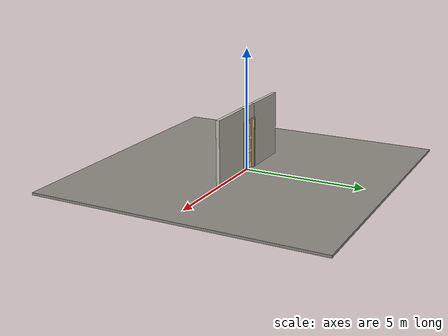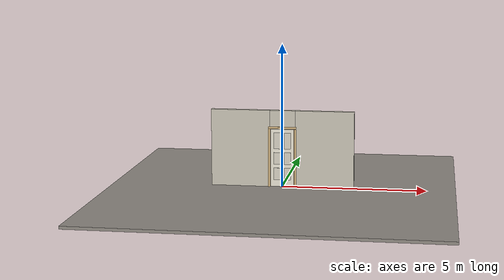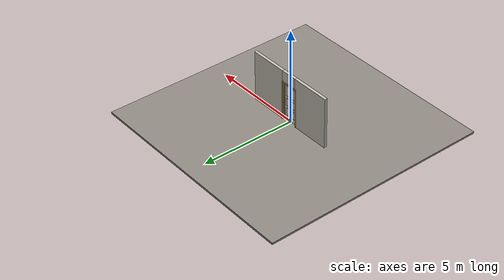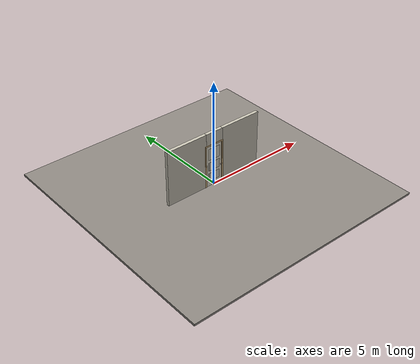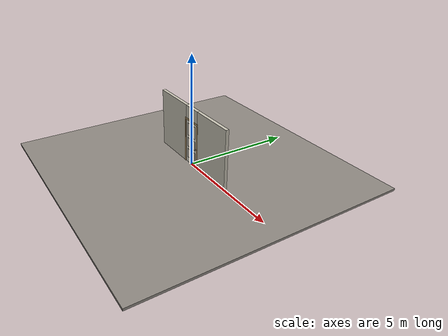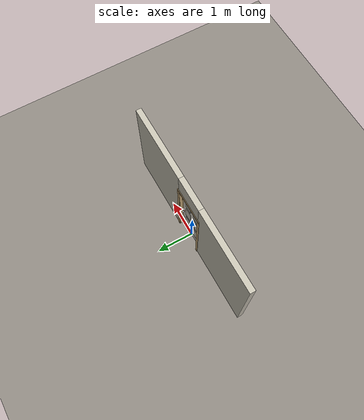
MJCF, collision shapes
<?xml version="1.0" ?>
<mujoco model="db0876_swing_single_full">
  <compiler angle="radian" meshdir="../../hardware" texturedir="../../textures" autolimits="true" inertiafromgeom="false"/>
  <option timestep="0.002" integrator="implicitfast" cone="elliptic" impratio="10" noslip_iterations="3">
    <flag multiccd="enable"/>
  </option>
  <size memory="16M"/>
  <default>
    <geom condim="4" solref="0.005 1" solimp="0.95 0.99 0.001"/>
    <joint solreflimit="0.005 1" solimplimit="0.95 0.99 0.001"/>
    <tendon solreflimit="0.005 1"/>
    <equality solref="0.002 1"/>
  </default>
  <visual>
    <headlight ambient="0.4 0.4 0.4" diffuse="0.7 0.7 0.7" specular="0.2 0.2 0.2"/>
    <quality shadowsize="4096"/>
    <map znear="0.01" zfar="60"/>
  </visual>
  <asset>
    <mesh name="hinge_96510cf394" file="hinge_96510cf394.obj"/>
    <mesh name="hinge_jamb_7fd4ca52b2" file="hinge_jamb_7fd4ca52b2.obj"/>
    <mesh name="knob_98a7916ed0" file="knob_98a7916ed0.obj"/>
    <material name="mat_floor" rgba="0.55 0.53 0.5 1" specular="0.2" shininess="0.15" reflectance="0"/>
    <material name="mat_wall" rgba="0.78 0.76 0.7 1" specular="0.2" shininess="0.1" reflectance="0"/>
    <material name="mat_leaf" rgba="0.9 0.88 0.82 1" specular="0.2" shininess="0.43" reflectance="0"/>
    <material name="mat_leaf_panel" rgba="0.828 0.81 0.754 1" specular="0.2" shininess="0.43" reflectance="0"/>
    <material name="mat_hinge" rgba="0.65 0.66 0.68 1" specular="0.74" shininess="0.5" reflectance="0.36"/>
    <material name="mat_op_glass_clear" rgba="0.85 0.92 0.95 0.25" specular="0.2" shininess="0.95" reflectance="0.1"/>
    <material name="mat_trim" rgba="0.85 0.66 0.3 1" specular="0.8" shininess="0.75" reflectance="0.4"/>
    <material name="mat_bolt" rgba="0.85 0.66 0.3 1" specular="0.8" shininess="0.75" reflectance="0.4"/>
    <material name="mat_frame" rgba="0.82 0.7 0.5 1" specular="0.2" shininess="0.45" reflectance="0"/>
    <texture name="skybox" type="skybox" builtin="gradient" rgb1="0.6 0.7 0.85" rgb2="0.9 0.92 0.95" width="256" height="256"/>
  </asset>
  <worldbody>
    <light name="sun" pos="1.5 -2.5 4" dir="-0.3 0.5 -0.8" directional="true" diffuse="0.8 0.8 0.8" specular="0.3 0.3 0.3" castshadow="true"/>
    <light name="fill" pos="-1.5 2.5 3" dir="0.3 -0.5 -0.7" directional="true" diffuse="0.35 0.35 0.4" castshadow="false"/>
    <camera name="robot_view" pos="0 -2.494187 1.734312" xyaxes="1 0 0 0 0.26963 0.962964" fovy="52"/>
    <camera name="far_view" pos="0 2.590187 1.734312" xyaxes="-1 0 0 0 -0.26963 0.962964" fovy="52"/>
    <camera name="iso" pos="1.932062 -2.087438 2.141063" xyaxes="0.741536 0.670913 0 -0.242917 0.268487 0.932151" fovy="46"/>
    <camera name="detail_handle" pos="0.526 -0.8625 1.194" xyaxes="0.97561 0.219512 0 -0.070934 0.315262 0.94635" fovy="38"/>
    <geom name="floor" type="box" size="6 6 0.05" pos="0 0 -0.05" material="mat_floor" group="0" contype="1" conaffinity="1" friction="0.8 0.005 0.0001" density="2400"/>
    <geom name="wall_left" type="box" size="1.0355 0.0725 1.35" pos="-1.4645 0.048 1.35" material="mat_wall" group="0" contype="1" conaffinity="1" friction="0.6 0.005 0.0001" density="800"/>
    <geom name="wall_right" type="box" size="1.0205 0.0725 1.35" pos="1.4795 0.048 1.35" material="mat_wall" group="0" contype="1" conaffinity="1" friction="0.6 0.005 0.0001" density="800"/>
    <geom name="wall_header" type="box" size="0.444 0.0725 0.303" pos="0.015 0.048 2.397" material="mat_wall" group="0" contype="1" conaffinity="1" friction="0.6 0.005 0.0001" density="800"/>
    <geom name="hinge_0_jamb" type="mesh" mesh="hinge_jamb_7fd4ca52b2" pos="-0.407 -0.0245 0.259" material="mat_hinge" group="1" contype="0" conaffinity="0" density="7850"/>
    <geom name="hinge_1_jamb" type="mesh" mesh="hinge_jamb_7fd4ca52b2" pos="-0.407 -0.0245 1.025" material="mat_hinge" group="1" contype="0" conaffinity="0" density="7850"/>
    <geom name="hinge_2_jamb" type="mesh" mesh="hinge_jamb_7fd4ca52b2" pos="-0.407 -0.0245 1.861" material="mat_hinge" group="1" contype="0" conaffinity="0" density="7850"/>
    <geom name="jamb_hinge" type="box" size="0.0095 0.0725 1.0225" pos="-0.4195 0.048 1.0225" material="mat_frame" group="0" contype="1" conaffinity="1" friction="0.6 0.005 0.0001" density="400"/>
    <geom name="strike_914_wall_n" type="box" size="0.0245 0.056325 0.0167" pos="0.4345 0.064175 0.914" material="mat_frame" group="0" contype="1" conaffinity="1" friction="0.6 0.005 0.0001" density="400"/>
    <geom name="strike_914_wall_p" type="box" size="0.0245 0.008 0.0167" pos="0.4345 -0.01585 0.914" material="mat_frame" group="0" contype="1" conaffinity="1" friction="0.6 0.005 0.0001" density="400"/>
    <geom name="strike_914_ramp" type="box" size="0.0245 0.01649 0.0167" pos="0.439136 -0.028673 0.914" quat="0.977148 0 0 0.212558" material="mat_frame" group="0" contype="1" conaffinity="1" friction="0.12 0.005 0.0001" density="400"/>
    <geom name="strike_914_back" type="box" size="0.01615 0.00785 0.0167" pos="0.44285 0 0.914" material="mat_frame" group="0" contype="1" conaffinity="1" friction="0.6 0.005 0.0001" density="400"/>
    <geom name="jamb_strike_0" type="box" size="0.0245 0.0725 0.44865" pos="0.4345 0.048 0.44865" material="mat_frame" group="0" contype="1" conaffinity="1" friction="0.6 0.005 0.0001" density="400"/>
    <geom name="jamb_strike_1" type="box" size="0.0245 0.0725 0.55715" pos="0.4345 0.048 1.48785" material="mat_frame" group="0" contype="1" conaffinity="1" friction="0.6 0.005 0.0001" density="400"/>
    <geom name="jamb_head" type="box" size="0.444 0.0725 0.0095" pos="0.015 0.048 2.0545" material="mat_frame" group="0" contype="1" conaffinity="1" friction="0.6 0.005 0.0001" density="400"/>
    <geom name="head_stud" type="box" size="0.444 0.0725 0.015" pos="0.015 0.048 2.079" material="mat_wall" group="0" contype="1" conaffinity="1" friction="0.6 0.005 0.0001" density="500"/>
    <geom name="stop_hinge" type="box" size="0.0055 0.016 1.0225" pos="-0.4045 0.034 1.0225" material="mat_frame" group="0" contype="1" conaffinity="1" friction="0.6 0.005 0.0001" density="400"/>
    <geom name="stop_strike" type="box" size="0.0055 0.016 1.0225" pos="0.4045 0.034 1.0225" material="mat_frame" group="0" contype="1" conaffinity="1" friction="0.6 0.005 0.0001" density="400"/>
    <geom name="stop_head" type="box" size="0.41 0.016 0.0055" pos="0 0.034 2.0395" material="mat_frame" group="0" contype="1" conaffinity="1" friction="0.6 0.005 0.0001" density="400"/>
    <geom name="casing_l_n" type="box" size="0.035 0.008 1.032" pos="-0.459 -0.0325 1.0225" material="mat_frame" group="2" contype="0" conaffinity="0" density="400"/>
    <geom name="casing_r_n" type="box" size="0.035 0.008 1.032" pos="0.459 -0.0325 1.0225" material="mat_frame" group="2" contype="0" conaffinity="0" density="400"/>
    <geom name="casing_h_n" type="box" size="0.494 0.008 0.035" pos="0 -0.0325 2.094" material="mat_frame" group="2" contype="0" conaffinity="0" density="400"/>
    <geom name="casing_l_p" type="box" size="0.035 0.008 1.032" pos="-0.459 0.1285 1.0225" material="mat_frame" group="2" contype="0" conaffinity="0" density="400"/>
    <geom name="casing_r_p" type="box" size="0.035 0.008 1.032" pos="0.459 0.1285 1.0225" material="mat_frame" group="2" contype="0" conaffinity="0" density="400"/>
    <geom name="casing_h_p" type="box" size="0.494 0.008 0.035" pos="0 0.1285 2.094" material="mat_frame" group="2" contype="0" conaffinity="0" density="400"/>
    <site name="approach_point" pos="0 -1.5 0" quat="1 0 0 0" size="0.05" rgba="0.2 0.9 0.2 0.5" group="4"/>
    <site name="goal_point" pos="0 1.5 0" quat="1 0 0 0" size="0.05" rgba="0.2 0.9 0.2 0.5" group="4"/>
    <site name="door_plane_center" pos="0 0 1.0225" quat="1 0 0 0" size="0.02" rgba="0.2 0.9 0.2 0.5" group="4"/>
    <body name="leaf" pos="-0.41 0 0">
      <inertial pos="0.398101 -0.000424 1.025611" mass="13.746095" quat="-0.499555 0.500984 -0.499002 -0.500458" diaginertia="0.802203133 4.760256705 5.559447262"/>
      <joint name="leaf_hinge" type="hinge" axis="0 0 -1" pos="0.003 -0.0245 0" limited="true" range="0 2.356194" damping="2.160326" frictionloss="1.832066" stiffness="6.6" springref="-0.409091" armature="0.02"/>
      <geom name="leaf_slab" type="box" size="0.4065 0.0175 1.016" pos="0.4095 0 1.025" material="mat_leaf" group="0" contype="1" conaffinity="1" friction="0.35 0.005 0.0001" density="1"/>
      <geom name="leaf_panel_0_n" type="box" size="0.11575 0.003 0.209032" pos="0.22875 -0.0205 0.461552" material="mat_leaf_panel" group="1" contype="0" conaffinity="0" density="1"/>
      <geom name="leaf_panel_0_p" type="box" size="0.11575 0.003 0.209032" pos="0.22875 0.0205 0.461552" material="mat_leaf_panel" group="1" contype="0" conaffinity="0" density="1"/>
      <geom name="leaf_panel_1_n" type="box" size="0.11575 0.003 0.209032" pos="0.59025 -0.0205 0.461552" material="mat_leaf_panel" group="1" contype="0" conaffinity="0" density="1"/>
      <geom name="leaf_panel_1_p" type="box" size="0.11575 0.003 0.209032" pos="0.59025 0.0205 0.461552" material="mat_leaf_panel" group="1" contype="0" conaffinity="0" density="1"/>
      <geom name="leaf_panel_2_n" type="box" size="0.11575 0.003 0.209032" pos="0.22875 -0.0205 1.009616" material="mat_leaf_panel" group="1" contype="0" conaffinity="0" density="1"/>
      <geom name="leaf_panel_2_p" type="box" size="0.11575 0.003 0.209032" pos="0.22875 0.0205 1.009616" material="mat_leaf_panel" group="1" contype="0" conaffinity="0" density="1"/>
      <geom name="leaf_panel_3_n" type="box" size="0.11575 0.003 0.209032" pos="0.59025 -0.0205 1.009616" material="mat_leaf_panel" group="1" contype="0" conaffinity="0" density="1"/>
      <geom name="leaf_panel_3_p" type="box" size="0.11575 0.003 0.209032" pos="0.59025 0.0205 1.009616" material="mat_leaf_panel" group="1" contype="0" conaffinity="0" density="1"/>
      <geom name="leaf_panel_4_n" type="box" size="0.11575 0.003 0.285376" pos="0.22875 -0.0205 1.634024" material="mat_leaf_panel" group="1" contype="0" conaffinity="0" density="1"/>
      <geom name="leaf_panel_4_p" type="box" size="0.11575 0.003 0.285376" pos="0.22875 0.0205 1.634024" material="mat_leaf_panel" group="1" contype="0" conaffinity="0" density="1"/>
      <geom name="leaf_panel_5_n" type="box" size="0.11575 0.003 0.285376" pos="0.59025 -0.0205 1.634024" material="mat_leaf_panel" group="1" contype="0" conaffinity="0" density="1"/>
      <geom name="leaf_panel_5_p" type="box" size="0.11575 0.003 0.285376" pos="0.59025 0.0205 1.634024" material="mat_leaf_panel" group="1" contype="0" conaffinity="0" density="1"/>
      <geom name="hinge_0" type="mesh" mesh="hinge_96510cf394" pos="0.003 -0.0245 0.259" material="mat_hinge" group="1" contype="0" conaffinity="0" density="7850"/>
      <geom name="hinge_1" type="mesh" mesh="hinge_96510cf394" pos="0.003 -0.0245 1.025" material="mat_hinge" group="1" contype="0" conaffinity="0" density="7850"/>
      <geom name="hinge_2" type="mesh" mesh="hinge_96510cf394" pos="0.003 -0.0245 1.861" material="mat_hinge" group="1" contype="0" conaffinity="0" density="7850"/>
      <geom name="leaf_latch_bolt_faceplate" type="box" size="0.0006 0.01235 0.0267" pos="0.8154 0 0.914" material="mat_bolt" group="1" contype="0" conaffinity="0" density="8500"/>
      <site name="leaf_edge_mid" pos="0.816 0 1.016" quat="1 0 0 0" size="0.02" rgba="0.2 0.9 0.2 0.5" group="4"/>
      <body name="leaf_handle" pos="0.756 0 0.914">
        <inertial pos="0 0 0" mass="0.963808" quat="-0.5 0.5 -0.5 0.5" diaginertia="0.000215172 0.002993593 0.002993593"/>
        <joint name="leaf_handle_hinge" type="hinge" axis="0 -1 0" limited="true" range="0 0.8" damping="0.119588" frictionloss="0.032" stiffness="0.35" springref="-0.428571" armature="0.01"/>
        <geom name="leaf_handle_spindle" type="cylinder" size="0.006 0.0255" pos="0 0 0" quat="0.707107 -0.707107 0 0" material="mat_op_glass_clear" group="1" contype="0" conaffinity="0" density="7850"/>
        <geom name="leaf_handle_knob_n" type="mesh" mesh="knob_98a7916ed0" pos="0 -0.0175 0" quat="0.707107 0.707107 0 0" material="mat_op_glass_clear" group="1" contype="0" conaffinity="0" density="3000"/>
        <geom name="leaf_handle_knob_col_n" type="sphere" size="0.0234" pos="0 -0.0625 0" material="mat_op_glass_clear" group="0" contype="1" conaffinity="1" friction="0.9 0.01 0.0001" density="3000"/>
        <geom name="leaf_handle_knob_neck_n" type="cylinder" size="0.011 0.012" pos="0 -0.0295 0" quat="0.707107 -0.707107 0 0" material="mat_op_glass_clear" group="3" contype="1" conaffinity="1" rgba="0.8 0.3 0.3 0.25" friction="0.6 0.005 0.0001" density="3000"/>
        <geom name="leaf_handle_knob_p" type="mesh" mesh="knob_98a7916ed0" pos="0 0.0175 0" quat="-0.707107 0.707107 0 0" material="mat_op_glass_clear" group="1" contype="0" conaffinity="0" density="3000"/>
        <geom name="leaf_handle_knob_col_p" type="sphere" size="0.0234" pos="0 0.0625 0" material="mat_op_glass_clear" group="0" contype="1" conaffinity="1" friction="0.9 0.01 0.0001" density="3000"/>
        <geom name="leaf_handle_knob_neck_p" type="cylinder" size="0.011 0.012" pos="0 0.0295 0" quat="0.707107 -0.707107 0 0" material="mat_op_glass_clear" group="3" contype="1" conaffinity="1" rgba="0.8 0.3 0.3 0.25" friction="0.6 0.005 0.0001" density="3000"/>
        <site name="leaf_handle_grip_n" pos="0 -0.0625 0" quat="1 0 0 0" size="0.012" rgba="0.2 0.9 0.2 0.5" group="4"/>
        <site name="leaf_handle_grip_p" pos="0 0.0625 0" quat="1 0 0 0" size="0.012" rgba="0.2 0.9 0.2 0.5" group="4"/>
      </body>
      <body name="leaf_latch_bolt" pos="0.816 0 0.914">
        <inertial pos="-0.00865 0 0" mass="0.041419" quat="0.92388 -0.382683 0 0" diaginertia="0.000000798 0.000005598 0.000005598"/>
        <joint name="leaf_latch_bolt_slide" type="slide" axis="-1 0 0" limited="true" range="0 0.0127" damping="2" frictionloss="0.3" stiffness="300" springref="-0.008333" armature="0.1"/>
        <geom name="leaf_latch_bolt_capsule" type="capsule" size="0.00635 0.015" pos="-0.00865 0 0" quat="0.707107 0 0.707107 0" material="mat_bolt" group="0" contype="1" conaffinity="1" friction="0.2 0.005 0.0001" density="8500"/>
      </body>
    </body>
  </worldbody>
  <tendon>
    <fixed name="leaf_latch_bolt_coupling" limited="true" range="0 10">
      <joint joint="leaf_latch_bolt_slide" coef="1"/>
      <joint joint="leaf_handle_hinge" coef="-0.019538"/>
    </fixed>
  </tendon>
  <sensor>
    <jointpos name="leaf_hinge_pos" joint="leaf_hinge"/>
    <jointvel name="leaf_hinge_vel" joint="leaf_hinge"/>
    <jointpos name="leaf_handle_hinge_pos" joint="leaf_handle_hinge"/>
    <jointvel name="leaf_handle_hinge_vel" joint="leaf_handle_hinge"/>
    <jointpos name="leaf_latch_bolt_slide_pos" joint="leaf_latch_bolt_slide"/>
    <jointvel name="leaf_latch_bolt_slide_vel" joint="leaf_latch_bolt_slide"/>
  </sensor>
</mujoco>
